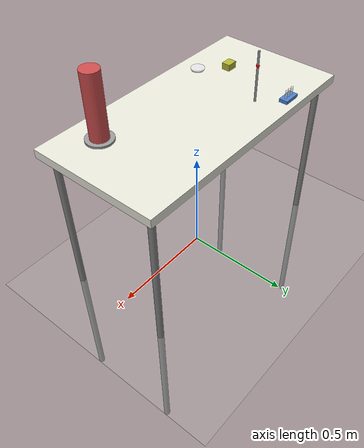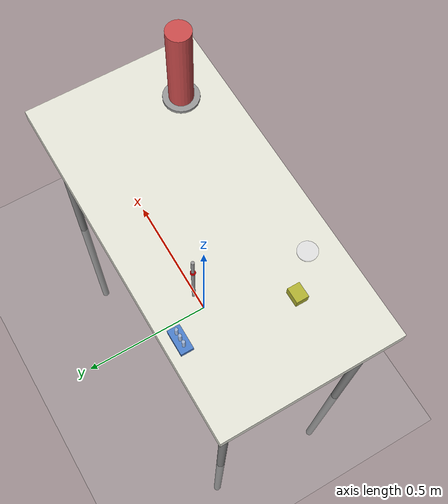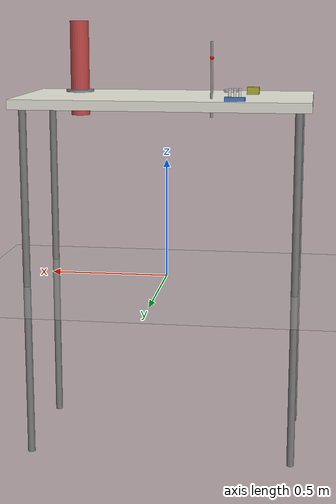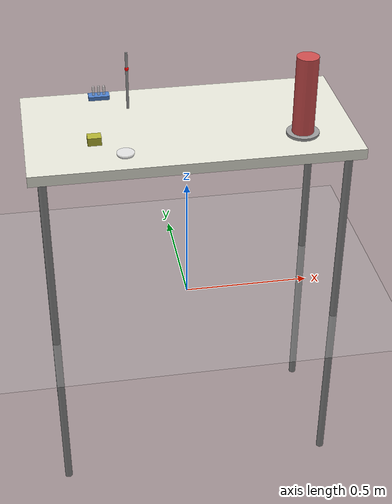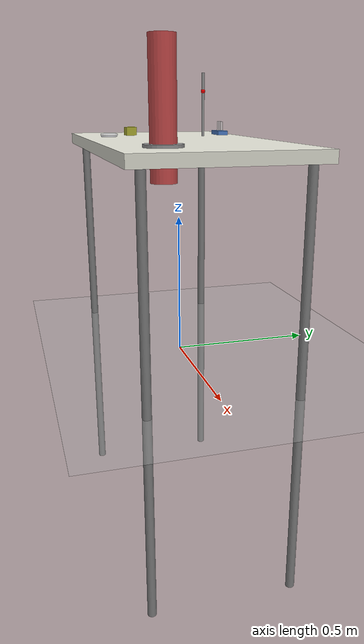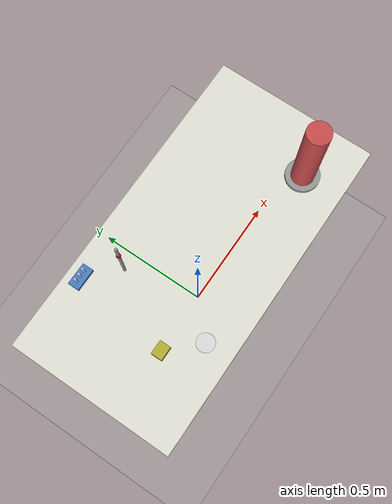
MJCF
<mujoco model="BMS Lab - CityU">
  <compiler angle="degree"/>

  <default>
    <geom type="box" density="500"/>
  </default>

  <worldbody>
    <light pos="2 2 3" directional="true" diffuse="1 1 1"/>
    <light pos="-2 -2 3" directional="true" diffuse=".6 .6 .6"/>

    <!-- Floor -->
    <geom name="floor" type="plane" size="2 2 0.01" rgba=".7 .7 .7 1"/>

    <!-- Lab Table: 120cm x 60cm x 75cm -->
    <body name="table" pos="0 0 0.75">
      <geom name="table_top" type="box" size="0.6 0.3 0.02" rgba=".9 .9 .85 1" pos="0 0 0"/>
      <!-- Table legs -->
      <geom name="leg1" type="cylinder" size="0.015 0.73" rgba=".5 .5 .5 1" pos="-0.55 -0.25 -0.75"/>
      <geom name="leg2" type="cylinder" size="0.015 0.73" rgba=".5 .5 .5 1" pos="0.55 -0.25 -0.75"/>
      <geom name="leg3" type="cylinder" size="0.015 0.73" rgba=".5 .5 .5 1" pos="-0.55 0.25 -0.75"/>
      <geom name="leg4" type="cylinder" size="0.015 0.73" rgba=".5 .5 .5 1" pos="0.55 0.25 -0.75"/>
    </body>

    <!-- MyCobot Pro 450 Arm (mounted on table) -->
    <body name="arm_base" pos="0.4 -0.15 0.77">
      <geom name="base_plate" type="cylinder" size="0.06 0.01" rgba=".6 .6 .6 1" pos="0 0 0"/>
      <geom name="arm_base_col" type="cylinder" size="0.04 0.20" rgba=".8 .3 .3 1" pos="0 0 0.1"/>
    </body>

    <!-- Red dot target on a stand -->
    <body name="target_stand" pos="-0.2 0.15 0.77">
      <!-- Stand pole -->
      <geom name="stand_pole" type="cylinder" size="0.005 0.15" rgba=".6 .6 .6 1" pos="0 0 0.075"/>
      <!-- Red dot (sphere) -->
      <geom name="red_dot" type="sphere" size="0.008" rgba="1 0 0 1" pos="0 0 0.16"/>
    </body>

    <!-- Petri dish on table -->
    <body name="petri_dish" pos="-0.25 -0.2 0.77">
      <geom name="dish_bottom" type="cylinder" size="0.03 0.005" rgba=".85 .85 .9 0.7" pos="0 0 0"/>
      <geom name="dish_lid" type="cylinder" size="0.032 0.003" rgba=".9 .9 .95 0.5" pos="0 0 0.008"/>
    </body>

    <!-- Eppendorf tube rack -->
    <body name="tube_rack" pos="-0.3 0.25 0.77">
      <!-- Rack body -->
      <geom name="rack_base" type="box" size="0.04 0.02 0.015" rgba=".3 .5 .8 1" pos="0 0 0"/>
      <!-- Row of tubes -->
      <geom name="tube1" type="cylinder" size="0.005 0.025" rgba=".9 .9 .9 0.6" pos="-0.02 0 0.025"/>
      <geom name="tube2" type="cylinder" size="0.005 0.025" rgba=".9 .9 .9 0.6" pos="0 0 0.025"/>
      <geom name="tube3" type="cylinder" size="0.005 0.025" rgba=".9 .9 .9 0.6" pos="0.02 0 0.025"/>
    </body>

    <!-- Pipette tips box -->
    <body name="tips_box" pos="-0.35 -0.1 0.77">
      <geom name="box_body" type="box" size="0.025 0.02 0.02" rgba=".7 .7 .2 1" pos="0 0 0.01"/>
    </body>
  </worldbody>
</mujoco>
